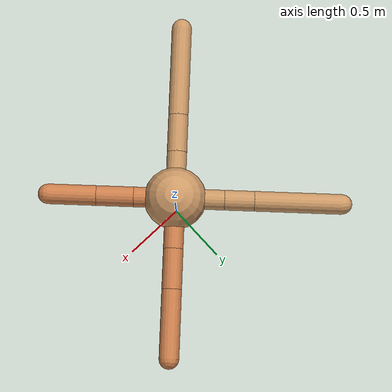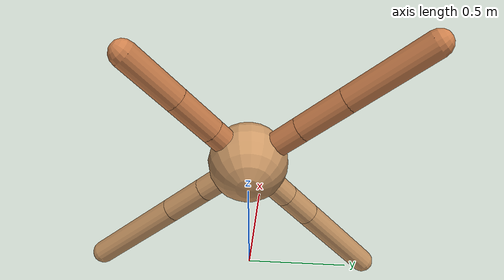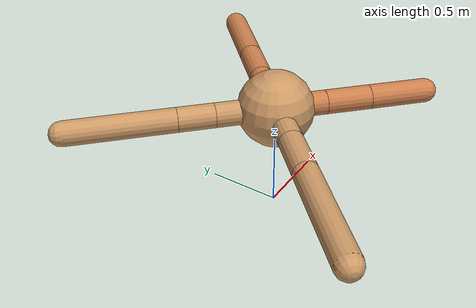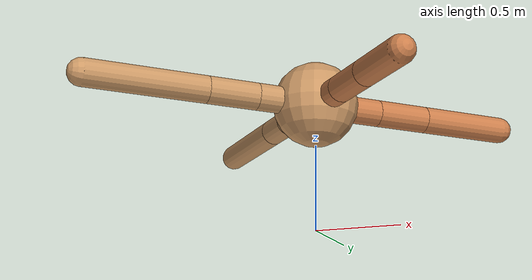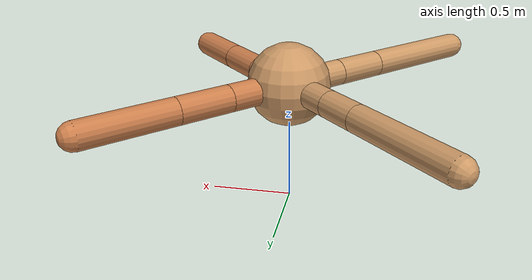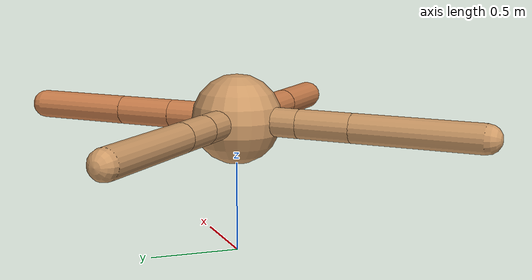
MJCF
<mujoco model="ant">
  <compiler angle="degree" coordinate="local" inertiafromgeom="true" />
  <option integrator="RK4" timestep="0.01" />
  <custom>
    <numeric data="0.0 0.0 0.55 1.0 0.0 0.0 0.0 0.0 1.0 0.0 -1.0 0.0 -1.0 0.0 1.0" name="init_qpos" />
  </custom>
  <default>
    <joint armature="1" damping="1" limited="true" />
    <geom conaffinity="0" condim="3" density="5.0" friction="1.5 0.1 0.1" margin="0.01" rgba="0.8 0.6 0.4 1" />
  </default>
  <worldbody>
    <body name="torso" pos="0 0 0.75">
      <geom name="torso_geom" pos="0 0 0" size="0.25" type="sphere" />

      <body name="front_left_leg" pos="0 0 0">
        <geom fromto="0.0 0.0 0.0 0.28628945942130296 0.28628945942130296 0.0" name="aux_1_geom" size="0.08" type="capsule" rgba=".8 .5 .3 1" />
        <body name="aux_1" pos="0.28628945942130296 0.28628945942130296 0.0">
          <joint axis="0 0 1" name="hip_1" pos="0.0 0.0 0.0" range="-40 40" type="hinge" />
          <geom fromto="0.0 0.0 0.0 0.22708072152619074 0.22708072152619074 0.0" name="left_leg_geom" size="0.08" type="capsule" rgba=".8 .5 .3 1" />
          <body pos="0.22708072152619074 0.22708072152619074 0.0" name="front_left_foot">
            <joint axis="-1 1 0" name="ankle_1" pos="0.0 0.0 0.0" range="30 100" type="hinge" />
            <geom fromto="0.0 0.0 0.0 0.38871267758577566 0.38871267758577566 0.0" name="left_ankle_geom" size="0.08" type="capsule" rgba=".8 .5 .3 1" />
          </body>
        </body>
      </body>
      <body name="front_right_leg" pos="0 0 0">
        <geom fromto="0.0 0.0 0.0 -0.277098401273118 0.277098401273118 0.0" name="aux_2_geom" size="0.08" type="capsule" />
        <body name="aux_2" pos="-0.277098401273118 0.277098401273118 0.0">
          <joint axis="0 0 1" name="hip_2" pos="0.0 0.0 0.0" range="-40 40" type="hinge" />
          <geom fromto="0.0 0.0 0.0 -0.1678303186032846 0.1678303186032846 0.0" name="right_leg_geom" size="0.08" type="capsule" />
          <body pos="-0.1678303186032846 0.1678303186032846 0.0" name="front_right_foot">
            <joint axis="1 1 0" name="ankle_2" pos="0.0 0.0 0.0" range="-100 -30" type="hinge" />
            <geom fromto="0.0 0.0 0.0 -0.4927731665598987 0.4927731665598987 0.0" name="right_ankle_geom" size="0.08" type="capsule" />
          </body>
        </body>
      </body>
      <body name="left_back_leg" pos="0 0 0">
        <geom fromto="0.0 0.0 0.0 -0.26343009616289675 -0.26343009616289675 0.0" name="aux_3_geom" size="0.08" type="capsule" />
        <body name="aux_3" pos="-0.26343009616289675 -0.26343009616289675 0.0">
          <joint axis="0 0 1" name="hip_3" pos="0.0 0.0 0.0" range="-40 40" type="hinge" />
          <geom fromto="0.0 0.0 0.0 -0.21194429867285292 -0.21194429867285292 0.0" name="back_leg_geom" size="0.08" type="capsule" />
          <body pos="-0.21194429867285292 -0.21194429867285292 0.0" name="left_back_foot">
            <joint axis="-1 1 0" name="ankle_3" pos="0.0 0.0 0.0" range="-100 -30" type="hinge" />
            <geom fromto="0.0 0.0 0.0 -0.5023007087901867 -0.5023007087901867 0.0" name="third_ankle_geom" size="0.08" type="capsule" />
          </body>
        </body>
      </body>
      <body name="right_back_leg" pos="0 0 0">
        <geom fromto="0.0 0.0 0.0 0.23364580662127732 -0.23364580662127732 0.0" name="aux_4_geom" size="0.08" type="capsule" rgba=".8 .5 .3 1" />
        <body name="aux_4" pos="0.23364580662127732 -0.23364580662127732 0.0">
          <joint axis="0 0 1" name="hip_4" pos="0.0 0.0 0.0" range="-40 40" type="hinge" />
          <geom fromto="0.0 0.0 0.0 0.2101095454156492 -0.2101095454156492 0.0" name="rightback_leg_geom" size="0.08" type="capsule" rgba=".8 .5 .3 1" />
          <body pos="0.2101095454156492 -0.2101095454156492 0.0" name="right_back_foot">
            <joint axis="1 1 0" name="ankle_4" pos="0.0 0.0 0.0" range="30 100" type="hinge" />
            <geom fromto="0.0 0.0 0.0 0.2723022907312683 -0.2723022907312683 0.0" name="fourth_ankle_geom" size="0.08" type="capsule" rgba=".8 .5 .3 1" />
          </body>
        </body>
      </body>
    </body>
  </worldbody>
  <actuator>
    <motor ctrllimited="true" ctrlrange="-1.0 1.0" joint="hip_4" gear="150" />
    <motor ctrllimited="true" ctrlrange="-1.0 1.0" joint="ankle_4" gear="150" />
    <motor ctrllimited="true" ctrlrange="-1.0 1.0" joint="hip_1" gear="150" />
    <motor ctrllimited="true" ctrlrange="-1.0 1.0" joint="ankle_1" gear="150" />
    <motor ctrllimited="true" ctrlrange="-1.0 1.0" joint="hip_2" gear="150" />
    <motor ctrllimited="true" ctrlrange="-1.0 1.0" joint="ankle_2" gear="150" />
    <motor ctrllimited="true" ctrlrange="-1.0 1.0" joint="hip_3" gear="150" />
    <motor ctrllimited="true" ctrlrange="-1.0 1.0" joint="ankle_3" gear="150" />
  </actuator>
</mujoco>
